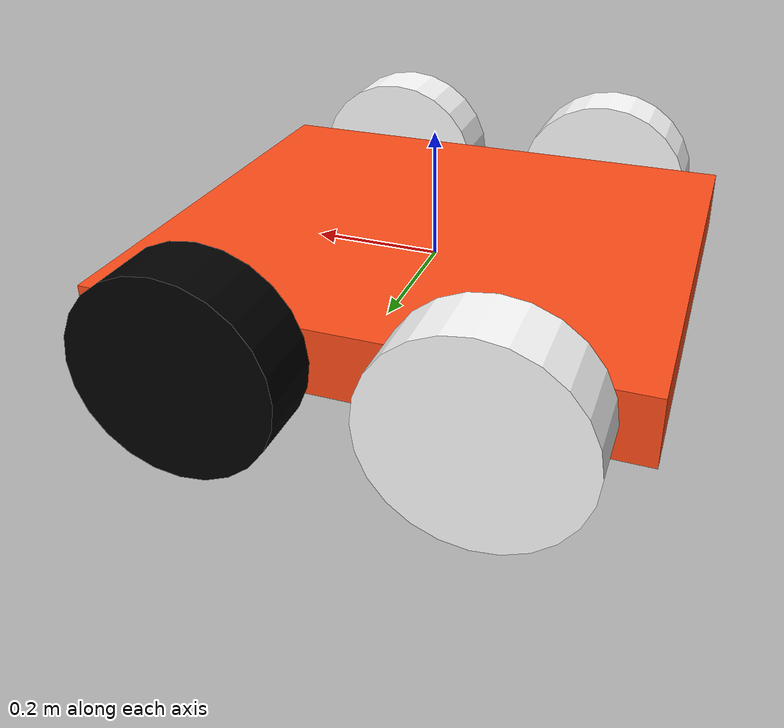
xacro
<?xml version="1.0"?>

<robot xmlns:xacro="http://www.ros.org/wiki/xacro" name="rover">
    <xacro:include filename="inertial_macros.xacro"/>

    <material name="white">
        <color rgba="1 1 1 1"/>
    </material>

    <material name="orange">
        <color rgba="1 0.3 0.1 1"/>
    </material>

    <material name="blue">
        <color rgba="0.2 0.2 1 1"/>
    </material>

    <material name="black">
        <color rgba="0 0 0 1"/>
    </material>

    <material name="red">
        <color rgba="1 0 0 1"/>
    </material>

    <link name="chassis">
        <visual>
            <geometry>
                <box size=".8 0.7 0.1"/>
            </geometry>
            <material name="orange"/>
        </visual>

        <collision>
            <geometry>
                <box size=".8 0.7 0.1"/>
            </geometry>
        </collision>
        <xacro:inertial_box mass="2" x="0.7" y="0.8" z="0.1">
            <origin xyz="0.0 0.0 0.0" rpy="0.0 0.0 0.0"/>
        </xacro:inertial_box>
    </link>

    <gazebo reference="chassis">
        <material>Gazebo/Orange</material>
    </gazebo>

    <joint name="wheel_front_right_joint" type="continuous">
        <origin xyz="0.20 0.4 0.0" rpy="1.571 0.0 0.0"/>
        <parent link="chassis"/>
        <child link="wheel_front_right"/>
        <axis xyz="0.0 0.0 1.0"/>
    </joint>

    <link name="wheel_front_right">
        <visual>
            <geometry>
                <cylinder radius="0.15" length="0.1"/>
            </geometry>
            <material name="black"/>
        </visual>

        <collision>
            <geometry>
                <cylinder radius="0.15" length="0.1"/>
            </geometry>
        </collision>
        <xacro:inertial_cylinder mass="2" length="0.1" radius="0.15">
            <origin xyz="0 0 0" rpy="0 0 0"/>
        </xacro:inertial_cylinder>
	</link>

    <gazebo reference="wheel_front_right">
        <material>Gazebo/Black</material>
    </gazebo>

	<joint name="wheel_front_left_joint" type="continuous">
        <origin xyz="0.20 -0.4 0.0" rpy="1.571 0.0 0.0"/>
        <parent link="chassis"/>
        <child link="wheel_front_left"/>
        <axis xyz="0.0 0.0 1.0"/>
    </joint>

    <link name="wheel_front_left">
        <visual>
            <geometry>
                <cylinder radius="0.15" length="0.1"/>
            </geometry>
            <material name="white"/>
        </visual>

        <collision>
            <geometry>
                <cylinder radius="0.15" length="0.1"/>
            </geometry>
        </collision>
        <xacro:inertial_cylinder mass="2" length="0.1" radius="0.15">
            <origin xyz="0 0 0" rpy="0 0 0"/>
        </xacro:inertial_cylinder>
    </link>

    <gazebo reference="wheel_front_left">
        <material>Gazebo/Black</material>
    </gazebo>

    <joint name="wheel_back_right_joint" type="continuous">
        <origin xyz="-0.20 0.4 0.0" rpy="1.571 0.0 0.0"/>
        <parent link="chassis"/>
        <child link="wheel_back_right"/>
        <axis xyz="0.0 0.0 1.0"/>
    </joint>

    <link name="wheel_back_right">
        <visual>
            <geometry>
                <cylinder radius="0.15" length="0.1"/>
            </geometry>
            <material name="white"/>
        </visual>

        <collision>
            <geometry>
                <cylinder radius="0.15" length="0.1"/>
            </geometry>
        </collision>
        <xacro:inertial_cylinder mass="2" length="0.1" radius="0.15">
            <origin xyz="0 0 0" rpy="0 0 0"/>
        </xacro:inertial_cylinder>
	</link>

    <gazebo reference="wheel_back_right">
        <material>Gazebo/Black</material>
    </gazebo>

	<joint name="wheel_back_left_joint" type="continuous">
        <origin xyz="-0.20 -0.4 0.0" rpy="1.571 0.0 0.0"/>
        <parent link="chassis"/>
        <child link="wheel_back_left"/>
        <axis xyz="0.0 0.0 1.0"/>
    </joint>

    <link name="wheel_back_left">
        <visual>
            <geometry>
                <cylinder radius="0.15" length="0.1"/>
            </geometry>
            <material name="white"/>
        </visual>

        <collision>
            <geometry>
                <cylinder radius="0.15" length="0.1"/>
            </geometry>
        </collision>
        <xacro:inertial_cylinder mass="2" length="0.1" radius="0.15">
            <origin xyz="0 0 0" rpy="0 0 0"/>
        </xacro:inertial_cylinder>
    </link>

    <gazebo reference="wheel_back_left">
        <material>Gazebo/Black</material>
    </gazebo>
</robot>

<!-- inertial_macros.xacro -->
<robot xmlns:xacro="http://www.ros.org/wiki/xacro"  name="robot">

    <!-- Specify some standard inertial calculations https://en.wikipedia.org/wiki/List_of_moments_of_inertia -->
    <!-- These make use of xacro's mathematical functionality -->

    <xacro:macro name="inertial_sphere" params="mass radius *origin">
        <inertial>
            <xacro:insert_block name="origin"/>
            <mass value="${mass}" />
            <inertia ixx="${(2/5) * mass * (radius*radius)}" ixy="0.0" ixz="0.0"
                    iyy="${(2/5) * mass * (radius*radius)}" iyz="0.0"
                    izz="${(2/5) * mass * (radius*radius)}" />
        </inertial>
    </xacro:macro>

    <xacro:macro name="inertial_box" params="mass x y z *origin">
        <inertial>
            <xacro:insert_block name="origin"/>
            <mass value="${mass}" />
            <inertia ixx="${(1/12) * mass * (y*y+z*z)}" ixy="0.0" ixz="0.0"
                    iyy="${(1/12) * mass * (x*x+z*z)}" iyz="0.0"
                    izz="${(1/12) * mass * (x*x+y*y)}" />
        </inertial>
    </xacro:macro>

    <xacro:macro name="inertial_cylinder" params="mass length radius *origin">
        <inertial>
            <xacro:insert_block name="origin"/>
            <mass value="${mass}" />
            <inertia ixx="${(1/12) * mass * (3*radius*radius + length*length)}" ixy="0.0" ixz="0.0"
                    iyy="${(1/12) * mass * (3*radius*radius + length*length)}" iyz="0.0"
                    izz="${(1/2) * mass * (radius*radius)}" />
        </inertial>
    </xacro:macro>

</robot>
